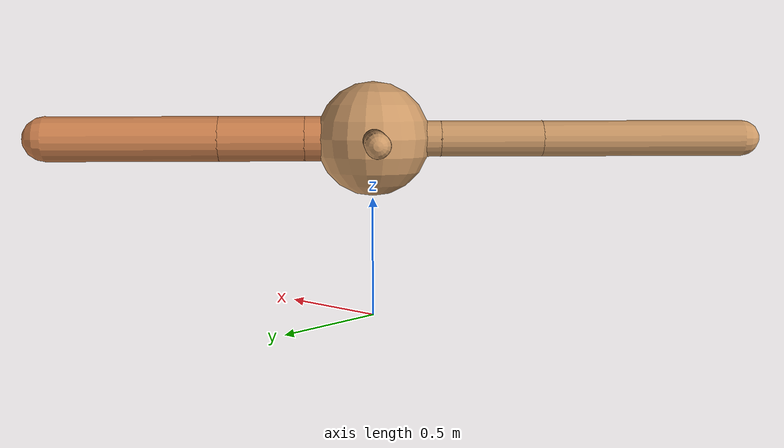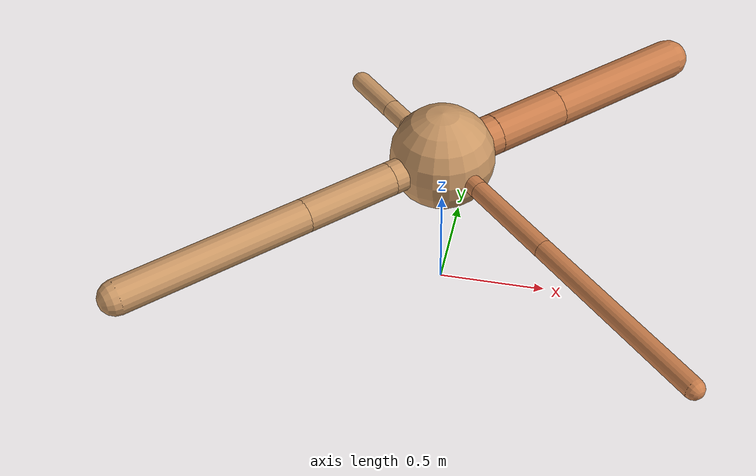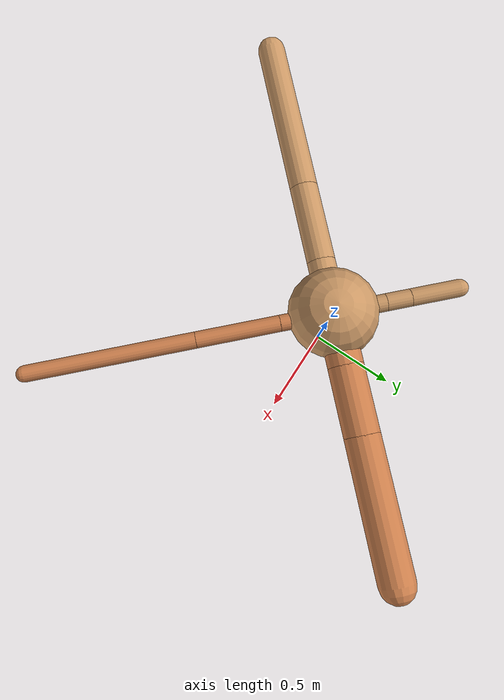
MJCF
<?xml version="1.0" ?>
<mujoco model="ant">

	<compiler angle="degree" coordinate="local" inertiafromgeom="true"/>

	<option integrator="RK4" timestep="0.01"/>

	<custom>

		<numeric data="0.0 0.0 0.55 1.0 0.0 0.0 0.0 0.0 1.0 0.0 -1.0 0.0 -1.0 0.0 1.0" name="init_qpos"/>

	</custom>

	<default>

		<joint armature="1" damping="1" limited="true"/>

		<geom conaffinity="0" condim="3" density="5.0" friction="1.5 0.1 0.1" margin="0.01" rgba="0.8 0.6 0.4 1"/>

	</default>

	<worldbody>

		<body name="torso" pos="0 0 0.75">

			<geom name="torso_geom" pos="0 0 0" size="0.2385466344591809" type="sphere"/>

			<!--joint armature="0" damping="0" limited="false" margin="0.01" name="root" pos="0 0 0" type="free"/-->

			<body name="front_left_leg" pos="0 0 0">

				<geom fromto="0 0 0 0.2 0.2 0" name="aux_1_geom" size="0.09407088507987275" type="capsule" rgba=".8 .5 .3 1"/>

				<body name="aux_1" pos="0.2 0.2 0">

					<joint axis="0 0 1" name="hip_1" pos="0.0 0.0 0.0" range="-40 40" type="hinge"/>

					<geom fromto="0 0 0 0.2505860037163314 0.2505860037163314 0" name="left_leg_geom" size="0.09407088507987275" type="capsule" rgba=".8 .5 .3 1"/>

					<body pos="0.2505860037163314 0.2505860037163314 0" name="front_left_foot">

						<joint axis="-1 1 0" name="ankle_1" pos="0.0 0.0 0.0" range="30 100" type="hinge"/>

						<geom fromto="0 0 0 0.5011720074326628 0.5011720074326628 0" name="left_ankle_geom" size="0.09407088507987275" type="capsule" rgba=".8 .5 .3 1"/>

					</body>

				</body>

			</body>

			<body name="front_right_leg" pos="0 0 0">

				<geom fromto="0 0 0 -0.2 0.2 0" name="aux_2_geom" size="0.04698811974911883" type="capsule"/>

				<body name="aux_2" pos="-0.2 0.2 0">

					<joint axis="0 0 1" name="hip_2" pos="0.0 0.0 0.0" range="-40 40" type="hinge"/>

					<geom fromto="0 0 0 -0.09343408861821577 0.09343408861821577 0" name="right_leg_geom" size="0.04698811974911883" type="capsule"/>

					<body pos="-0.09343408861821577 0.09343408861821577 0" name="front_right_foot">

						<joint axis="1 1 0" name="ankle_2" pos="0.0 0.0 0.0" range="-100 -30" type="hinge"/>

						<geom fromto="0 0 0 -0.18686817723643154 0.18686817723643154 0" name="right_ankle_geom" size="0.04698811974911883" type="capsule"/>

					</body>

				</body>

			</body>

			<body name="left_back_leg" pos="0 0 0">

				<geom fromto="0 0 0 -0.2 -0.2 0" name="aux_3_geom" size="0.07535275177993195" type="capsule"/>

				<body name="aux_3" pos="-0.2 -0.2 0">

					<joint axis="0 0 1" name="hip_3" pos="0.0 0.0 0.0" range="-40 40" type="hinge"/>

					<geom fromto="0 0 0 -0.30178683299668374 -0.30178683299668374 0" name="back_leg_geom" size="0.07535275177993195" type="capsule"/>

					<body pos="-0.30178683299668374 -0.30178683299668374 0" name="left_back_foot">

						<joint axis="-1 1 0" name="ankle_3" pos="0.0 0.0 0.0" range="-100 -30" type="hinge"/>

						<geom fromto="0 0 0 -0.6035736659933675 -0.6035736659933675 0" name="third_ankle_geom" size="0.07535275177993195" type="capsule"/>

					</body>

				</body>

			</body>

			<body name="right_back_leg" pos="0 0 0">

				<geom fromto="0 0 0 0.2 -0.2 0" name="aux_4_geom" size="0.0437137817968847" type="capsule" rgba=".8 .5 .3 1"/>

				<body name="aux_4" pos="0.2 -0.2 0">

					<joint axis="0 0 1" name="hip_4" pos="0.0 0.0 0.0" range="-40 40" type="hinge"/>

					<geom fromto="0 0 0 0.31342288591096806 -0.31342288591096806 0" name="rightback_leg_geom" size="0.0437137817968847" type="capsule" rgba=".8 .5 .3 1"/>

					<body pos="0.31342288591096806 -0.31342288591096806 0" name="right_back_foot">

						<joint axis="1 1 0" name="ankle_4" pos="0.0 0.0 0.0" range="30 100" type="hinge"/>

						<geom fromto="0 0 0 0.6268457718219361 -0.6268457718219361 0" name="fourth_ankle_geom" size="0.0437137817968847" type="capsule" rgba=".8 .5 .3 1"/>

					</body>

				</body>

			</body>

		</body>

	</worldbody>

	<actuator>

		<motor ctrllimited="true" ctrlrange="-1.0 1.0" joint="hip_4" gear="150"/>

		<motor ctrllimited="true" ctrlrange="-1.0 1.0" joint="ankle_4" gear="150"/>

		<motor ctrllimited="true" ctrlrange="-1.0 1.0" joint="hip_1" gear="150"/>

		<motor ctrllimited="true" ctrlrange="-1.0 1.0" joint="ankle_1" gear="150"/>

		<motor ctrllimited="true" ctrlrange="-1.0 1.0" joint="hip_2" gear="150"/>

		<motor ctrllimited="true" ctrlrange="-1.0 1.0" joint="ankle_2" gear="150"/>

		<motor ctrllimited="true" ctrlrange="-1.0 1.0" joint="hip_3" gear="150"/>

		<motor ctrllimited="true" ctrlrange="-1.0 1.0" joint="ankle_3" gear="150"/>

	</actuator>

</mujoco>
